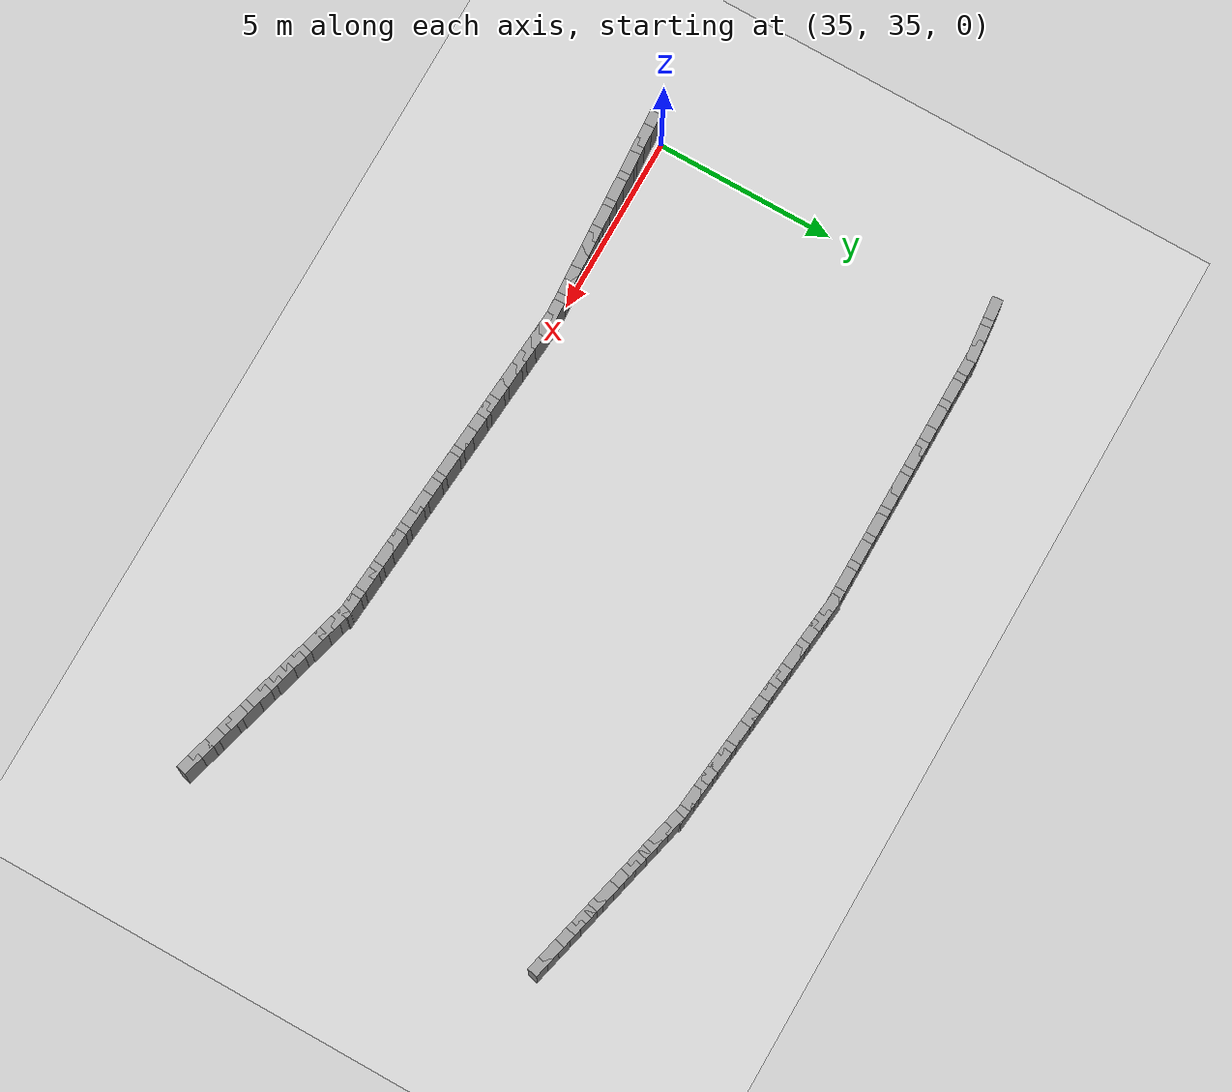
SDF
<sdf version="1.5">
 <world name="ellipse_loop">
  <include><uri>model://sun</uri></include>
  <include><uri>model://ground_plane</uri></include>
  <model name="curbL_297">
   <static>true</static>
   <pose>55.198 42.932 0.750 0 0 2.910</pose>
   <link name="link">
    <collision name="col"><geometry><box><size>0.600 0.300 1.500</size></box></geometry></collision>
    <visual name="vis">
     <geometry><box><size>0.600 0.300 1.500</size></box></geometry>
     <material><ambient>0.6 0.6 0.6 1</ambient><diffuse>0.6 0.6 0.6 1</diffuse></material>
    </visual>
   </link>
  </model>
  <model name="curbL_298">
   <static>true</static>
   <pose>54.809 43.024 0.750 0 0 2.910</pose>
   <link name="link">
    <collision name="col"><geometry><box><size>0.600 0.300 1.500</size></box></geometry></collision>
    <visual name="vis">
     <geometry><box><size>0.600 0.300 1.500</size></box></geometry>
     <material><ambient>0.6 0.6 0.6 1</ambient><diffuse>0.6 0.6 0.6 1</diffuse></material>
    </visual>
   </link>
  </model>
  <model name="curbL_299">
   <static>true</static>
   <pose>54.419 43.116 0.750 0 0 2.910</pose>
   <link name="link">
    <collision name="col"><geometry><box><size>0.600 0.300 1.500</size></box></geometry></collision>
    <visual name="vis">
     <geometry><box><size>0.600 0.300 1.500</size></box></geometry>
     <material><ambient>0.6 0.6 0.6 1</ambient><diffuse>0.6 0.6 0.6 1</diffuse></material>
    </visual>
   </link>
  </model>
  <model name="curbL_300">
   <static>true</static>
   <pose>54.030 43.208 0.750 0 0 2.910</pose>
   <link name="link">
    <collision name="col"><geometry><box><size>0.600 0.300 1.500</size></box></geometry></collision>
    <visual name="vis">
     <geometry><box><size>0.600 0.300 1.500</size></box></geometry>
     <material><ambient>0.6 0.6 0.6 1</ambient><diffuse>0.6 0.6 0.6 1</diffuse></material>
    </visual>
   </link>
  </model>
  <model name="curbL_301">
   <static>true</static>
   <pose>53.641 43.300 0.750 0 0 2.910</pose>
   <link name="link">
    <collision name="col"><geometry><box><size>0.600 0.300 1.500</size></box></geometry></collision>
    <visual name="vis">
     <geometry><box><size>0.600 0.300 1.500</size></box></geometry>
     <material><ambient>0.6 0.6 0.6 1</ambient><diffuse>0.6 0.6 0.6 1</diffuse></material>
    </visual>
   </link>
  </model>
  <model name="curbL_302">
   <static>true</static>
   <pose>53.252 43.391 0.750 0 0 2.910</pose>
   <link name="link">
    <collision name="col"><geometry><box><size>0.600 0.300 1.500</size></box></geometry></collision>
    <visual name="vis">
     <geometry><box><size>0.600 0.300 1.500</size></box></geometry>
     <material><ambient>0.6 0.6 0.6 1</ambient><diffuse>0.6 0.6 0.6 1</diffuse></material>
    </visual>
   </link>
  </model>
  <model name="curbL_303">
   <static>true</static>
   <pose>52.862 43.483 0.750 0 0 2.910</pose>
   <link name="link">
    <collision name="col"><geometry><box><size>0.600 0.300 1.500</size></box></geometry></collision>
    <visual name="vis">
     <geometry><box><size>0.600 0.300 1.500</size></box></geometry>
     <material><ambient>0.6 0.6 0.6 1</ambient><diffuse>0.6 0.6 0.6 1</diffuse></material>
    </visual>
   </link>
  </model>
  <model name="curbL_304">
   <static>true</static>
   <pose>52.473 43.575 0.750 0 0 2.910</pose>
   <link name="link">
    <collision name="col"><geometry><box><size>0.600 0.300 1.500</size></box></geometry></collision>
    <visual name="vis">
     <geometry><box><size>0.600 0.300 1.500</size></box></geometry>
     <material><ambient>0.6 0.6 0.6 1</ambient><diffuse>0.6 0.6 0.6 1</diffuse></material>
    </visual>
   </link>
  </model>
  <model name="curbL_305">
   <static>true</static>
   <pose>52.084 43.667 0.750 0 0 2.910</pose>
   <link name="link">
    <collision name="col"><geometry><box><size>0.600 0.300 1.500</size></box></geometry></collision>
    <visual name="vis">
     <geometry><box><size>0.600 0.300 1.500</size></box></geometry>
     <material><ambient>0.6 0.6 0.6 1</ambient><diffuse>0.6 0.6 0.6 1</diffuse></material>
    </visual>
   </link>
  </model>
  <model name="curbL_306">
   <static>true</static>
   <pose>51.694 43.759 0.750 0 0 2.910</pose>
   <link name="link">
    <collision name="col"><geometry><box><size>0.600 0.300 1.500</size></box></geometry></collision>
    <visual name="vis">
     <geometry><box><size>0.600 0.300 1.500</size></box></geometry>
     <material><ambient>0.6 0.6 0.6 1</ambient><diffuse>0.6 0.6 0.6 1</diffuse></material>
    </visual>
   </link>
  </model>
  <model name="curbL_307">
   <static>true</static>
   <pose>51.305 43.851 0.750 0 0 2.910</pose>
   <link name="link">
    <collision name="col"><geometry><box><size>0.600 0.300 1.500</size></box></geometry></collision>
    <visual name="vis">
     <geometry><box><size>0.600 0.300 1.500</size></box></geometry>
     <material><ambient>0.6 0.6 0.6 1</ambient><diffuse>0.6 0.6 0.6 1</diffuse></material>
    </visual>
   </link>
  </model>
  <model name="curbL_308">
   <static>true</static>
   <pose>50.916 43.943 0.750 0 0 2.910</pose>
   <link name="link">
    <collision name="col"><geometry><box><size>0.600 0.300 1.500</size></box></geometry></collision>
    <visual name="vis">
     <geometry><box><size>0.600 0.300 1.500</size></box></geometry>
     <material><ambient>0.6 0.6 0.6 1</ambient><diffuse>0.6 0.6 0.6 1</diffuse></material>
    </visual>
   </link>
  </model>
  <model name="curbL_309">
   <static>true</static>
   <pose>50.527 44.035 0.750 0 0 2.910</pose>
   <link name="link">
    <collision name="col"><geometry><box><size>0.600 0.300 1.500</size></box></geometry></collision>
    <visual name="vis">
     <geometry><box><size>0.600 0.300 1.500</size></box></geometry>
     <material><ambient>0.6 0.6 0.6 1</ambient><diffuse>0.6 0.6 0.6 1</diffuse></material>
    </visual>
   </link>
  </model>
  <model name="curbL_310">
   <static>true</static>
   <pose>50.137 44.126 0.750 0 0 3.035</pose>
   <link name="link">
    <collision name="col"><geometry><box><size>0.600 0.300 1.500</size></box></geometry></collision>
    <visual name="vis">
     <geometry><box><size>0.600 0.300 1.500</size></box></geometry>
     <material><ambient>0.6 0.6 0.6 1</ambient><diffuse>0.6 0.6 0.6 1</diffuse></material>
    </visual>
   </link>
  </model>
  <model name="curbL_311">
   <static>true</static>
   <pose>49.739 44.168 0.750 0 0 3.035</pose>
   <link name="link">
    <collision name="col"><geometry><box><size>0.600 0.300 1.500</size></box></geometry></collision>
    <visual name="vis">
     <geometry><box><size>0.600 0.300 1.500</size></box></geometry>
     <material><ambient>0.6 0.6 0.6 1</ambient><diffuse>0.6 0.6 0.6 1</diffuse></material>
    </visual>
   </link>
  </model>
  <model name="curbL_312">
   <static>true</static>
   <pose>49.342 44.211 0.750 0 0 3.035</pose>
   <link name="link">
    <collision name="col"><geometry><box><size>0.600 0.300 1.500</size></box></geometry></collision>
    <visual name="vis">
     <geometry><box><size>0.600 0.300 1.500</size></box></geometry>
     <material><ambient>0.6 0.6 0.6 1</ambient><diffuse>0.6 0.6 0.6 1</diffuse></material>
    </visual>
   </link>
  </model>
  <model name="curbL_313">
   <static>true</static>
   <pose>48.944 44.253 0.750 0 0 3.035</pose>
   <link name="link">
    <collision name="col"><geometry><box><size>0.600 0.300 1.500</size></box></geometry></collision>
    <visual name="vis">
     <geometry><box><size>0.600 0.300 1.500</size></box></geometry>
     <material><ambient>0.6 0.6 0.6 1</ambient><diffuse>0.6 0.6 0.6 1</diffuse></material>
    </visual>
   </link>
  </model>
  <model name="curbL_314">
   <static>true</static>
   <pose>48.546 44.296 0.750 0 0 3.035</pose>
   <link name="link">
    <collision name="col"><geometry><box><size>0.600 0.300 1.500</size></box></geometry></collision>
    <visual name="vis">
     <geometry><box><size>0.600 0.300 1.500</size></box></geometry>
     <material><ambient>0.6 0.6 0.6 1</ambient><diffuse>0.6 0.6 0.6 1</diffuse></material>
    </visual>
   </link>
  </model>
  <model name="curbL_315">
   <static>true</static>
   <pose>48.148 44.338 0.750 0 0 3.035</pose>
   <link name="link">
    <collision name="col"><geometry><box><size>0.600 0.300 1.500</size></box></geometry></collision>
    <visual name="vis">
     <geometry><box><size>0.600 0.300 1.500</size></box></geometry>
     <material><ambient>0.6 0.6 0.6 1</ambient><diffuse>0.6 0.6 0.6 1</diffuse></material>
    </visual>
   </link>
  </model>
  <model name="curbL_316">
   <static>true</static>
   <pose>47.751 44.381 0.750 0 0 3.035</pose>
   <link name="link">
    <collision name="col"><geometry><box><size>0.600 0.300 1.500</size></box></geometry></collision>
    <visual name="vis">
     <geometry><box><size>0.600 0.300 1.500</size></box></geometry>
     <material><ambient>0.6 0.6 0.6 1</ambient><diffuse>0.6 0.6 0.6 1</diffuse></material>
    </visual>
   </link>
  </model>
  <model name="curbL_317">
   <static>true</static>
   <pose>47.353 44.423 0.750 0 0 3.035</pose>
   <link name="link">
    <collision name="col"><geometry><box><size>0.600 0.300 1.500</size></box></geometry></collision>
    <visual name="vis">
     <geometry><box><size>0.600 0.300 1.500</size></box></geometry>
     <material><ambient>0.6 0.6 0.6 1</ambient><diffuse>0.6 0.6 0.6 1</diffuse></material>
    </visual>
   </link>
  </model>
  <model name="curbL_318">
   <static>true</static>
   <pose>46.955 44.466 0.750 0 0 3.035</pose>
   <link name="link">
    <collision name="col"><geometry><box><size>0.600 0.300 1.500</size></box></geometry></collision>
    <visual name="vis">
     <geometry><box><size>0.600 0.300 1.500</size></box></geometry>
     <material><ambient>0.6 0.6 0.6 1</ambient><diffuse>0.6 0.6 0.6 1</diffuse></material>
    </visual>
   </link>
  </model>
  <model name="curbL_319">
   <static>true</static>
   <pose>46.557 44.508 0.750 0 0 3.035</pose>
   <link name="link">
    <collision name="col"><geometry><box><size>0.600 0.300 1.500</size></box></geometry></collision>
    <visual name="vis">
     <geometry><box><size>0.600 0.300 1.500</size></box></geometry>
     <material><ambient>0.6 0.6 0.6 1</ambient><diffuse>0.6 0.6 0.6 1</diffuse></material>
    </visual>
   </link>
  </model>
  <model name="curbL_320">
   <static>true</static>
   <pose>46.160 44.551 0.750 0 0 3.035</pose>
   <link name="link">
    <collision name="col"><geometry><box><size>0.600 0.300 1.500</size></box></geometry></collision>
    <visual name="vis">
     <geometry><box><size>0.600 0.300 1.500</size></box></geometry>
     <material><ambient>0.6 0.6 0.6 1</ambient><diffuse>0.6 0.6 0.6 1</diffuse></material>
    </visual>
   </link>
  </model>
  <model name="curbL_321">
   <static>true</static>
   <pose>45.762 44.593 0.750 0 0 3.035</pose>
   <link name="link">
    <collision name="col"><geometry><box><size>0.600 0.300 1.500</size></box></geometry></collision>
    <visual name="vis">
     <geometry><box><size>0.600 0.300 1.500</size></box></geometry>
     <material><ambient>0.6 0.6 0.6 1</ambient><diffuse>0.6 0.6 0.6 1</diffuse></material>
    </visual>
   </link>
  </model>
  <model name="curbL_322">
   <static>true</static>
   <pose>45.364 44.636 0.750 0 0 3.035</pose>
   <link name="link">
    <collision name="col"><geometry><box><size>0.600 0.300 1.500</size></box></geometry></collision>
    <visual name="vis">
     <geometry><box><size>0.600 0.300 1.500</size></box></geometry>
     <material><ambient>0.6 0.6 0.6 1</ambient><diffuse>0.6 0.6 0.6 1</diffuse></material>
    </visual>
   </link>
  </model>
  <model name="curbL_323">
   <static>true</static>
   <pose>44.967 44.678 0.750 0 0 3.035</pose>
   <link name="link">
    <collision name="col"><geometry><box><size>0.600 0.300 1.500</size></box></geometry></collision>
    <visual name="vis">
     <geometry><box><size>0.600 0.300 1.500</size></box></geometry>
     <material><ambient>0.6 0.6 0.6 1</ambient><diffuse>0.6 0.6 0.6 1</diffuse></material>
    </visual>
   </link>
  </model>
  <model name="curbL_324">
   <static>true</static>
   <pose>44.569 44.721 0.750 0 0 3.035</pose>
   <link name="link">
    <collision name="col"><geometry><box><size>0.600 0.300 1.500</size></box></geometry></collision>
    <visual name="vis">
     <geometry><box><size>0.600 0.300 1.500</size></box></geometry>
     <material><ambient>0.6 0.6 0.6 1</ambient><diffuse>0.6 0.6 0.6 1</diffuse></material>
    </visual>
   </link>
  </model>
  <model name="curbL_325">
   <static>true</static>
   <pose>44.171 44.763 0.750 0 0 3.035</pose>
   <link name="link">
    <collision name="col"><geometry><box><size>0.600 0.300 1.500</size></box></geometry></collision>
    <visual name="vis">
     <geometry><box><size>0.600 0.300 1.500</size></box></geometry>
     <material><ambient>0.6 0.6 0.6 1</ambient><diffuse>0.6 0.6 0.6 1</diffuse></material>
    </visual>
   </link>
  </model>
  <model name="curbL_326">
   <static>true</static>
   <pose>43.773 44.806 0.750 0 0 3.035</pose>
   <link name="link">
    <collision name="col"><geometry><box><size>0.600 0.300 1.500</size></box></geometry></collision>
    <visual name="vis">
     <geometry><box><size>0.600 0.300 1.500</size></box></geometry>
     <material><ambient>0.6 0.6 0.6 1</ambient><diffuse>0.6 0.6 0.6 1</diffuse></material>
    </visual>
   </link>
  </model>
  <model name="curbL_327">
   <static>true</static>
   <pose>43.373 44.809 0.750 0 0 3.142</pose>
   <link name="link">
    <collision name="col"><geometry><box><size>0.600 0.300 1.500</size></box></geometry></collision>
    <visual name="vis">
     <geometry><box><size>0.600 0.300 1.500</size></box></geometry>
     <material><ambient>0.6 0.6 0.6 1</ambient><diffuse>0.6 0.6 0.6 1</diffuse></material>
    </visual>
   </link>
  </model>
  <model name="curbL_328">
   <static>true</static>
   <pose>42.973 44.809 0.750 0 0 3.142</pose>
   <link name="link">
    <collision name="col"><geometry><box><size>0.600 0.300 1.500</size></box></geometry></collision>
    <visual name="vis">
     <geometry><box><size>0.600 0.300 1.500</size></box></geometry>
     <material><ambient>0.6 0.6 0.6 1</ambient><diffuse>0.6 0.6 0.6 1</diffuse></material>
    </visual>
   </link>
  </model>
  <model name="curbL_329">
   <static>true</static>
   <pose>42.573 44.809 0.750 0 0 3.142</pose>
   <link name="link">
    <collision name="col"><geometry><box><size>0.600 0.300 1.500</size></box></geometry></collision>
    <visual name="vis">
     <geometry><box><size>0.600 0.300 1.500</size></box></geometry>
     <material><ambient>0.6 0.6 0.6 1</ambient><diffuse>0.6 0.6 0.6 1</diffuse></material>
    </visual>
   </link>
  </model>
  <model name="curbL_330">
   <static>true</static>
   <pose>42.173 44.809 0.750 0 0 3.142</pose>
   <link name="link">
    <collision name="col"><geometry><box><size>0.600 0.300 1.500</size></box></geometry></collision>
    <visual name="vis">
     <geometry><box><size>0.600 0.300 1.500</size></box></geometry>
     <material><ambient>0.6 0.6 0.6 1</ambient><diffuse>0.6 0.6 0.6 1</diffuse></material>
    </visual>
   </link>
  </model>
  <model name="curbL_331">
   <static>true</static>
   <pose>41.773 44.809 0.750 0 0 3.142</pose>
   <link name="link">
    <collision name="col"><geometry><box><size>0.600 0.300 1.500</size></box></geometry></collision>
    <visual name="vis">
     <geometry><box><size>0.600 0.300 1.500</size></box></geometry>
     <material><ambient>0.6 0.6 0.6 1</ambient><diffuse>0.6 0.6 0.6 1</diffuse></material>
    </visual>
   </link>
  </model>
  <model name="curbL_332">
   <static>true</static>
   <pose>41.373 44.809 0.750 0 0 3.142</pose>
   <link name="link">
    <collision name="col"><geometry><box><size>0.600 0.300 1.500</size></box></geometry></collision>
    <visual name="vis">
     <geometry><box><size>0.600 0.300 1.500</size></box></geometry>
     <material><ambient>0.6 0.6 0.6 1</ambient><diffuse>0.6 0.6 0.6 1</diffuse></material>
    </visual>
   </link>
  </model>
  <model name="curbL_333">
   <static>true</static>
   <pose>40.973 44.809 0.750 0 0 3.142</pose>
   <link name="link">
    <collision name="col"><geometry><box><size>0.600 0.300 1.500</size></box></geometry></collision>
    <visual name="vis">
     <geometry><box><size>0.600 0.300 1.500</size></box></geometry>
     <material><ambient>0.6 0.6 0.6 1</ambient><diffuse>0.6 0.6 0.6 1</diffuse></material>
    </visual>
   </link>
  </model>
  <model name="curbL_334">
   <static>true</static>
   <pose>40.573 44.809 0.750 0 0 3.142</pose>
   <link name="link">
    <collision name="col"><geometry><box><size>0.600 0.300 1.500</size></box></geometry></collision>
    <visual name="vis">
     <geometry><box><size>0.600 0.300 1.500</size></box></geometry>
     <material><ambient>0.6 0.6 0.6 1</ambient><diffuse>0.6 0.6 0.6 1</diffuse></material>
    </visual>
   </link>
  </model>
  <model name="curbL_335">
   <static>true</static>
   <pose>40.173 44.809 0.750 0 0 3.142</pose>
   <link name="link">
    <collision name="col"><geometry><box><size>0.600 0.300 1.500</size></box></geometry></collision>
    <visual name="vis">
     <geometry><box><size>0.600 0.300 1.500</size></box></geometry>
     <material><ambient>0.6 0.6 0.6 1</ambient><diffuse>0.6 0.6 0.6 1</diffuse></material>
    </visual>
   </link>
  </model>
  <model name="curbL_336">
   <static>true</static>
   <pose>39.773 44.809 0.750 0 0 3.142</pose>
   <link name="link">
    <collision name="col"><geometry><box><size>0.600 0.300 1.500</size></box></geometry></collision>
    <visual name="vis">
     <geometry><box><size>0.600 0.300 1.500</size></box></geometry>
     <material><ambient>0.6 0.6 0.6 1</ambient><diffuse>0.6 0.6 0.6 1</diffuse></material>
    </visual>
   </link>
  </model>
  <model name="curbL_337">
   <static>true</static>
   <pose>39.373 44.809 0.750 0 0 3.142</pose>
   <link name="link">
    <collision name="col"><geometry><box><size>0.600 0.300 1.500</size></box></geometry></collision>
    <visual name="vis">
     <geometry><box><size>0.600 0.300 1.500</size></box></geometry>
     <material><ambient>0.6 0.6 0.6 1</ambient><diffuse>0.6 0.6 0.6 1</diffuse></material>
    </visual>
   </link>
  </model>
  <model name="curbL_338">
   <static>true</static>
   <pose>38.973 44.809 0.750 0 0 3.142</pose>
   <link name="link">
    <collision name="col"><geometry><box><size>0.600 0.300 1.500</size></box></geometry></collision>
    <visual name="vis">
     <geometry><box><size>0.600 0.300 1.500</size></box></geometry>
     <material><ambient>0.6 0.6 0.6 1</ambient><diffuse>0.6 0.6 0.6 1</diffuse></material>
    </visual>
   </link>
  </model>
  <model name="curbL_339">
   <static>true</static>
   <pose>38.573 44.809 0.750 0 0 3.142</pose>
   <link name="link">
    <collision name="col"><geometry><box><size>0.600 0.300 1.500</size></box></geometry></collision>
    <visual name="vis">
     <geometry><box><size>0.600 0.300 1.500</size></box></geometry>
     <material><ambient>0.6 0.6 0.6 1</ambient><diffuse>0.6 0.6 0.6 1</diffuse></material>
    </visual>
   </link>
  </model>
  <model name="curbL_340">
   <static>true</static>
   <pose>38.173 44.809 0.750 0 0 3.142</pose>
   <link name="link">
    <collision name="col"><geometry><box><size>0.600 0.300 1.500</size></box></geometry></collision>
    <visual name="vis">
     <geometry><box><size>0.600 0.300 1.500</size></box></geometry>
     <material><ambient>0.6 0.6 0.6 1</ambient><diffuse>0.6 0.6 0.6 1</diffuse></material>
    </visual>
   </link>
  </model>
  <model name="curbL_341">
   <static>true</static>
   <pose>37.773 44.809 0.750 0 0 3.142</pose>
   <link name="link">
    <collision name="col"><geometry><box><size>0.600 0.300 1.500</size></box></geometry></collision>
    <visual name="vis">
     <geometry><box><size>0.600 0.300 1.500</size></box></geometry>
     <material><ambient>0.6 0.6 0.6 1</ambient><diffuse>0.6 0.6 0.6 1</diffuse></material>
    </visual>
   </link>
  </model>
  <model name="curbL_342">
   <static>true</static>
   <pose>37.373 44.809 0.750 0 0 3.142</pose>
   <link name="link">
    <collision name="col"><geometry><box><size>0.600 0.300 1.500</size></box></geometry></collision>
    <visual name="vis">
     <geometry><box><size>0.600 0.300 1.500</size></box></geometry>
     <material><ambient>0.6 0.6 0.6 1</ambient><diffuse>0.6 0.6 0.6 1</diffuse></material>
    </visual>
   </link>
  </model>
  <model name="curbL_343">
   <static>true</static>
   <pose>36.973 44.809 0.750 0 0 3.142</pose>
   <link name="link">
    <collision name="col"><geometry><box><size>0.600 0.300 1.500</size></box></geometry></collision>
    <visual name="vis">
     <geometry><box><size>0.600 0.300 1.500</size></box></geometry>
     <material><ambient>0.6 0.6 0.6 1</ambient><diffuse>0.6 0.6 0.6 1</diffuse></material>
    </visual>
   </link>
  </model>
  <model name="curbL_344">
   <static>true</static>
   <pose>36.573 44.809 0.750 0 0 3.142</pose>
   <link name="link">
    <collision name="col"><geometry><box><size>0.600 0.300 1.500</size></box></geometry></collision>
    <visual name="vis">
     <geometry><box><size>0.600 0.300 1.500</size></box></geometry>
     <material><ambient>0.6 0.6 0.6 1</ambient><diffuse>0.6 0.6 0.6 1</diffuse></material>
    </visual>
   </link>
  </model>
  <model name="curbL_345">
   <static>true</static>
   <pose>36.174 44.798 0.750 0 0 -3.042</pose>
   <link name="link">
    <collision name="col"><geometry><box><size>0.600 0.300 1.500</size></box></geometry></collision>
    <visual name="vis">
     <geometry><box><size>0.600 0.300 1.500</size></box></geometry>
     <material><ambient>0.6 0.6 0.6 1</ambient><diffuse>0.6 0.6 0.6 1</diffuse></material>
    </visual>
   </link>
  </model>
  <model name="curbL_346">
   <static>true</static>
   <pose>35.776 44.758 0.750 0 0 -3.042</pose>
   <link name="link">
    <collision name="col"><geometry><box><size>0.600 0.300 1.500</size></box></geometry></collision>
    <visual name="vis">
     <geometry><box><size>0.600 0.300 1.500</size></box></geometry>
     <material><ambient>0.6 0.6 0.6 1</ambient><diffuse>0.6 0.6 0.6 1</diffuse></material>
    </visual>
   </link>
  </model>
  <model name="curbL_347">
   <static>true</static>
   <pose>35.378 44.719 0.750 0 0 -3.042</pose>
   <link name="link">
    <collision name="col"><geometry><box><size>0.600 0.300 1.500</size></box></geometry></collision>
    <visual name="vis">
     <geometry><box><size>0.600 0.300 1.500</size></box></geometry>
     <material><ambient>0.6 0.6 0.6 1</ambient><diffuse>0.6 0.6 0.6 1</diffuse></material>
    </visual>
   </link>
  </model>
  <model name="curbL_348">
   <static>true</static>
   <pose>34.980 44.679 0.750 0 0 -3.042</pose>
   <link name="link">
    <collision name="col"><geometry><box><size>0.600 0.300 1.500</size></box></geometry></collision>
    <visual name="vis">
     <geometry><box><size>0.600 0.300 1.500</size></box></geometry>
     <material><ambient>0.6 0.6 0.6 1</ambient><diffuse>0.6 0.6 0.6 1</diffuse></material>
    </visual>
   </link>
  </model>
  <model name="curbR_59">
   <static>true</static>
   <pose>34.984 34.653 0.750 0 0 0.058</pose>
   <link name="link">
    <collision name="col"><geometry><box><size>0.600 0.300 1.500</size></box></geometry></collision>
    <visual name="vis">
     <geometry><box><size>0.600 0.300 1.500</size></box></geometry>
     <material><ambient>0.6 0.6 0.6 1</ambient><diffuse>0.6 0.6 0.6 1</diffuse></material>
    </visual>
   </link>
  </model>
  <model name="curbR_60">
   <static>true</static>
   <pose>35.383 34.676 0.750 0 0 0.058</pose>
   <link name="link">
    <collision name="col"><geometry><box><size>0.600 0.300 1.500</size></box></geometry></collision>
    <visual name="vis">
     <geometry><box><size>0.600 0.300 1.500</size></box></geometry>
     <material><ambient>0.6 0.6 0.6 1</ambient><diffuse>0.6 0.6 0.6 1</diffuse></material>
    </visual>
   </link>
  </model>
  <model name="curbR_61">
   <static>true</static>
   <pose>35.783 34.699 0.750 0 0 0.058</pose>
   <link name="link">
    <collision name="col"><geometry><box><size>0.600 0.300 1.500</size></box></geometry></collision>
    <visual name="vis">
     <geometry><box><size>0.600 0.300 1.500</size></box></geometry>
     <material><ambient>0.6 0.6 0.6 1</ambient><diffuse>0.6 0.6 0.6 1</diffuse></material>
    </visual>
   </link>
  </model>
  <model name="curbR_62">
   <static>true</static>
   <pose>36.182 34.722 0.750 0 0 0.058</pose>
   <link name="link">
    <collision name="col"><geometry><box><size>0.600 0.300 1.500</size></box></geometry></collision>
    <visual name="vis">
     <geometry><box><size>0.600 0.300 1.500</size></box></geometry>
     <material><ambient>0.6 0.6 0.6 1</ambient><diffuse>0.6 0.6 0.6 1</diffuse></material>
    </visual>
   </link>
  </model>
  <model name="curbR_63">
   <static>true</static>
   <pose>36.581 34.746 0.750 0 0 0.058</pose>
   <link name="link">
    <collision name="col"><geometry><box><size>0.600 0.300 1.500</size></box></geometry></collision>
    <visual name="vis">
     <geometry><box><size>0.600 0.300 1.500</size></box></geometry>
     <material><ambient>0.6 0.6 0.6 1</ambient><diffuse>0.6 0.6 0.6 1</diffuse></material>
    </visual>
   </link>
  </model>
  <model name="curbR_64">
   <static>true</static>
   <pose>36.981 34.769 0.750 0 0 0.058</pose>
   <link name="link">
    <collision name="col"><geometry><box><size>0.600 0.300 1.500</size></box></geometry></collision>
    <visual name="vis">
     <geometry><box><size>0.600 0.300 1.500</size></box></geometry>
     <material><ambient>0.6 0.6 0.6 1</ambient><diffuse>0.6 0.6 0.6 1</diffuse></material>
    </visual>
   </link>
  </model>
  <model name="curbR_65">
   <static>true</static>
   <pose>37.380 34.792 0.750 0 0 0.058</pose>
   <link name="link">
    <collision name="col"><geometry><box><size>0.600 0.300 1.500</size></box></geometry></collision>
    <visual name="vis">
     <geometry><box><size>0.600 0.300 1.500</size></box></geometry>
     <material><ambient>0.6 0.6 0.6 1</ambient><diffuse>0.6 0.6 0.6 1</diffuse></material>
    </visual>
   </link>
  </model>
  <model name="curbR_66">
   <static>true</static>
   <pose>37.779 34.815 0.750 0 0 0.058</pose>
   <link name="link">
    <collision name="col"><geometry><box><size>0.600 0.300 1.500</size></box></geometry></collision>
    <visual name="vis">
     <geometry><box><size>0.600 0.300 1.500</size></box></geometry>
     <material><ambient>0.6 0.6 0.6 1</ambient><diffuse>0.6 0.6 0.6 1</diffuse></material>
    </visual>
   </link>
  </model>
  <model name="curbR_67">
   <static>true</static>
   <pose>38.179 34.838 0.750 0 0 0.058</pose>
   <link name="link">
    <collision name="col"><geometry><box><size>0.600 0.300 1.500</size></box></geometry></collision>
    <visual name="vis">
     <geometry><box><size>0.600 0.300 1.500</size></box></geometry>
     <material><ambient>0.6 0.6 0.6 1</ambient><diffuse>0.6 0.6 0.6 1</diffuse></material>
    </visual>
   </link>
  </model>
  <model name="curbR_68">
   <static>true</static>
   <pose>38.578 34.862 0.750 0 0 0.058</pose>
   <link name="link">
    <collision name="col"><geometry><box><size>0.600 0.300 1.500</size></box></geometry></collision>
    <visual name="vis">
     <geometry><box><size>0.600 0.300 1.500</size></box></geometry>
     <material><ambient>0.6 0.6 0.6 1</ambient><diffuse>0.6 0.6 0.6 1</diffuse></material>
    </visual>
   </link>
  </model>
  <model name="curbR_69">
   <static>true</static>
   <pose>38.977 34.885 0.750 0 0 0.058</pose>
   <link name="link">
    <collision name="col"><geometry><box><size>0.600 0.300 1.500</size></box></geometry></collision>
    <visual name="vis">
     <geometry><box><size>0.600 0.300 1.500</size></box></geometry>
     <material><ambient>0.6 0.6 0.6 1</ambient><diffuse>0.6 0.6 0.6 1</diffuse></material>
    </visual>
   </link>
  </model>
  <model name="curbR_70">
   <static>true</static>
   <pose>39.377 34.908 0.750 0 0 0.058</pose>
   <link name="link">
    <collision name="col"><geometry><box><size>0.600 0.300 1.500</size></box></geometry></collision>
    <visual name="vis">
     <geometry><box><size>0.600 0.300 1.500</size></box></geometry>
     <material><ambient>0.6 0.6 0.6 1</ambient><diffuse>0.6 0.6 0.6 1</diffuse></material>
    </visual>
   </link>
  </model>
  <model name="curbR_71">
   <static>true</static>
   <pose>39.776 34.931 0.750 0 0 0.058</pose>
   <link name="link">
    <collision name="col"><geometry><box><size>0.600 0.300 1.500</size></box></geometry></collision>
    <visual name="vis">
     <geometry><box><size>0.600 0.300 1.500</size></box></geometry>
     <material><ambient>0.6 0.6 0.6 1</ambient><diffuse>0.6 0.6 0.6 1</diffuse></material>
    </visual>
   </link>
  </model>
  <model name="curbR_72">
   <static>true</static>
   <pose>40.175 34.954 0.750 0 0 0.058</pose>
   <link name="link">
    <collision name="col"><geometry><box><size>0.600 0.300 1.500</size></box></geometry></collision>
    <visual name="vis">
     <geometry><box><size>0.600 0.300 1.500</size></box></geometry>
     <material><ambient>0.6 0.6 0.6 1</ambient><diffuse>0.6 0.6 0.6 1</diffuse></material>
    </visual>
   </link>
  </model>
  <model name="curbR_73">
   <static>true</static>
   <pose>40.574 34.978 0.750 0 0 0.058</pose>
   <link name="link">
    <collision name="col"><geometry><box><size>0.600 0.300 1.500</size></box></geometry></collision>
    <visual name="vis">
     <geometry><box><size>0.600 0.300 1.500</size></box></geometry>
     <material><ambient>0.6 0.6 0.6 1</ambient><diffuse>0.6 0.6 0.6 1</diffuse></material>
    </visual>
   </link>
  </model>
  <model name="curbR_74">
   <static>true</static>
   <pose>40.973 34.957 0.750 0 0 -0.076</pose>
   <link name="link">
    <collision name="col"><geometry><box><size>0.600 0.300 1.500</size></box></geometry></collision>
    <visual name="vis">
     <geometry><box><size>0.600 0.300 1.500</size></box></geometry>
     <material><ambient>0.6 0.6 0.6 1</ambient><diffuse>0.6 0.6 0.6 1</diffuse></material>
    </visual>
   </link>
  </model>
  <model name="curbR_75">
   <static>true</static>
   <pose>41.372 34.927 0.750 0 0 -0.076</pose>
   <link name="link">
    <collision name="col"><geometry><box><size>0.600 0.300 1.500</size></box></geometry></collision>
    <visual name="vis">
     <geometry><box><size>0.600 0.300 1.500</size></box></geometry>
     <material><ambient>0.6 0.6 0.6 1</ambient><diffuse>0.6 0.6 0.6 1</diffuse></material>
    </visual>
   </link>
  </model>
  <model name="curbR_76">
   <static>true</static>
   <pose>41.771 34.896 0.750 0 0 -0.076</pose>
   <link name="link">
    <collision name="col"><geometry><box><size>0.600 0.300 1.500</size></box></geometry></collision>
    <visual name="vis">
     <geometry><box><size>0.600 0.300 1.500</size></box></geometry>
     <material><ambient>0.6 0.6 0.6 1</ambient><diffuse>0.6 0.6 0.6 1</diffuse></material>
    </visual>
   </link>
  </model>
  <model name="curbR_77">
   <static>true</static>
   <pose>42.170 34.865 0.750 0 0 -0.076</pose>
   <link name="link">
    <collision name="col"><geometry><box><size>0.600 0.300 1.500</size></box></geometry></collision>
    <visual name="vis">
     <geometry><box><size>0.600 0.300 1.500</size></box></geometry>
     <material><ambient>0.6 0.6 0.6 1</ambient><diffuse>0.6 0.6 0.6 1</diffuse></material>
    </visual>
   </link>
  </model>
  <model name="curbR_78">
   <static>true</static>
   <pose>42.569 34.835 0.750 0 0 -0.076</pose>
   <link name="link">
    <collision name="col"><geometry><box><size>0.600 0.300 1.500</size></box></geometry></collision>
    <visual name="vis">
     <geometry><box><size>0.600 0.300 1.500</size></box></geometry>
     <material><ambient>0.6 0.6 0.6 1</ambient><diffuse>0.6 0.6 0.6 1</diffuse></material>
    </visual>
   </link>
  </model>
  <model name="curbR_79">
   <static>true</static>
   <pose>42.968 34.804 0.750 0 0 -0.076</pose>
   <link name="link">
    <collision name="col"><geometry><box><size>0.600 0.300 1.500</size></box></geometry></collision>
    <visual name="vis">
     <geometry><box><size>0.600 0.300 1.500</size></box></geometry>
     <material><ambient>0.6 0.6 0.6 1</ambient><diffuse>0.6 0.6 0.6 1</diffuse></material>
    </visual>
   </link>
  </model>
  <model name="curbR_80">
   <static>true</static>
   <pose>43.366 34.774 0.750 0 0 -0.076</pose>
   <link name="link">
    <collision name="col"><geometry><box><size>0.600 0.300 1.500</size></box></geometry></collision>
    <visual name="vis">
     <geometry><box><size>0.600 0.300 1.500</size></box></geometry>
     <material><ambient>0.6 0.6 0.6 1</ambient><diffuse>0.6 0.6 0.6 1</diffuse></material>
    </visual>
   </link>
  </model>
  <model name="curbR_81">
   <static>true</static>
   <pose>43.765 34.743 0.750 0 0 -0.076</pose>
   <link name="link">
    <collision name="col"><geometry><box><size>0.600 0.300 1.500</size></box></geometry></collision>
    <visual name="vis">
     <geometry><box><size>0.600 0.300 1.500</size></box></geometry>
     <material><ambient>0.6 0.6 0.6 1</ambient><diffuse>0.6 0.6 0.6 1</diffuse></material>
    </visual>
   </link>
  </model>
  <model name="curbR_82">
   <static>true</static>
   <pose>44.164 34.713 0.750 0 0 -0.076</pose>
   <link name="link">
    <collision name="col"><geometry><box><size>0.600 0.300 1.500</size></box></geometry></collision>
    <visual name="vis">
     <geometry><box><size>0.600 0.300 1.500</size></box></geometry>
     <material><ambient>0.6 0.6 0.6 1</ambient><diffuse>0.6 0.6 0.6 1</diffuse></material>
    </visual>
   </link>
  </model>
  <model name="curbR_83">
   <static>true</static>
   <pose>44.563 34.682 0.750 0 0 -0.076</pose>
   <link name="link">
    <collision name="col"><geometry><box><size>0.600 0.300 1.500</size></box></geometry></collision>
    <visual name="vis">
     <geometry><box><size>0.600 0.300 1.500</size></box></geometry>
     <material><ambient>0.6 0.6 0.6 1</ambient><diffuse>0.6 0.6 0.6 1</diffuse></material>
    </visual>
   </link>
  </model>
  <model name="curbR_84">
   <static>true</static>
   <pose>44.962 34.651 0.750 0 0 -0.076</pose>
   <link name="link">
    <collision name="col"><geometry><box><size>0.600 0.300 1.500</size></box></geometry></collision>
    <visual name="vis">
     <geometry><box><size>0.600 0.300 1.500</size></box></geometry>
     <material><ambient>0.6 0.6 0.6 1</ambient><diffuse>0.6 0.6 0.6 1</diffuse></material>
    </visual>
   </link>
  </model>
  <model name="curbR_85">
   <static>true</static>
   <pose>45.361 34.621 0.750 0 0 -0.076</pose>
   <link name="link">
    <collision name="col"><geometry><box><size>0.600 0.300 1.500</size></box></geometry></collision>
    <visual name="vis">
     <geometry><box><size>0.600 0.300 1.500</size></box></geometry>
     <material><ambient>0.6 0.6 0.6 1</ambient><diffuse>0.6 0.6 0.6 1</diffuse></material>
    </visual>
   </link>
  </model>
  <model name="curbR_86">
   <static>true</static>
   <pose>45.759 34.590 0.750 0 0 -0.076</pose>
   <link name="link">
    <collision name="col"><geometry><box><size>0.600 0.300 1.500</size></box></geometry></collision>
    <visual name="vis">
     <geometry><box><size>0.600 0.300 1.500</size></box></geometry>
     <material><ambient>0.6 0.6 0.6 1</ambient><diffuse>0.6 0.6 0.6 1</diffuse></material>
    </visual>
   </link>
  </model>
  <model name="curbR_87">
   <static>true</static>
   <pose>46.158 34.560 0.750 0 0 -0.076</pose>
   <link name="link">
    <collision name="col"><geometry><box><size>0.600 0.300 1.500</size></box></geometry></collision>
    <visual name="vis">
     <geometry><box><size>0.600 0.300 1.500</size></box></geometry>
     <material><ambient>0.6 0.6 0.6 1</ambient><diffuse>0.6 0.6 0.6 1</diffuse></material>
    </visual>
   </link>
  </model>
  <model name="curbR_88">
   <static>true</static>
   <pose>46.557 34.529 0.750 0 0 -0.076</pose>
   <link name="link">
    <collision name="col"><geometry><box><size>0.600 0.300 1.500</size></box></geometry></collision>
    <visual name="vis">
     <geometry><box><size>0.600 0.300 1.500</size></box></geometry>
     <material><ambient>0.6 0.6 0.6 1</ambient><diffuse>0.6 0.6 0.6 1</diffuse></material>
    </visual>
   </link>
  </model>
  <model name="curbR_89">
   <static>true</static>
   <pose>46.956 34.499 0.750 0 0 -0.076</pose>
   <link name="link">
    <collision name="col"><geometry><box><size>0.600 0.300 1.500</size></box></geometry></collision>
    <visual name="vis">
     <geometry><box><size>0.600 0.300 1.500</size></box></geometry>
     <material><ambient>0.6 0.6 0.6 1</ambient><diffuse>0.6 0.6 0.6 1</diffuse></material>
    </visual>
   </link>
  </model>
  <model name="curbR_90">
   <static>true</static>
   <pose>47.355 34.468 0.750 0 0 -0.076</pose>
   <link name="link">
    <collision name="col"><geometry><box><size>0.600 0.300 1.500</size></box></geometry></collision>
    <visual name="vis">
     <geometry><box><size>0.600 0.300 1.500</size></box></geometry>
     <material><ambient>0.6 0.6 0.6 1</ambient><diffuse>0.6 0.6 0.6 1</diffuse></material>
    </visual>
   </link>
  </model>
  <model name="curbR_91">
   <static>true</static>
   <pose>47.754 34.438 0.750 0 0 -0.076</pose>
   <link name="link">
    <collision name="col"><geometry><box><size>0.600 0.300 1.500</size></box></geometry></collision>
    <visual name="vis">
     <geometry><box><size>0.600 0.300 1.500</size></box></geometry>
     <material><ambient>0.6 0.6 0.6 1</ambient><diffuse>0.6 0.6 0.6 1</diffuse></material>
    </visual>
   </link>
  </model>
  <model name="curbR_92">
   <static>true</static>
   <pose>48.152 34.407 0.750 0 0 -0.076</pose>
   <link name="link">
    <collision name="col"><geometry><box><size>0.600 0.300 1.500</size></box></geometry></collision>
    <visual name="vis">
     <geometry><box><size>0.600 0.300 1.500</size></box></geometry>
     <material><ambient>0.6 0.6 0.6 1</ambient><diffuse>0.6 0.6 0.6 1</diffuse></material>
    </visual>
   </link>
  </model>
  <model name="curbR_93">
   <static>true</static>
   <pose>48.551 34.376 0.750 0 0 -0.076</pose>
   <link name="link">
    <collision name="col"><geometry><box><size>0.600 0.300 1.500</size></box></geometry></collision>
    <visual name="vis">
     <geometry><box><size>0.600 0.300 1.500</size></box></geometry>
     <material><ambient>0.6 0.6 0.6 1</ambient><diffuse>0.6 0.6 0.6 1</diffuse></material>
    </visual>
   </link>
  </model>
  <model name="curbR_94">
   <static>true</static>
   <pose>48.950 34.346 0.750 0 0 -0.076</pose>
   <link name="link">
    <collision name="col"><geometry><box><size>0.600 0.300 1.500</size></box></geometry></collision>
    <visual name="vis">
     <geometry><box><size>0.600 0.300 1.500</size></box></geometry>
     <material><ambient>0.6 0.6 0.6 1</ambient><diffuse>0.6 0.6 0.6 1</diffuse></material>
    </visual>
   </link>
  </model>
  <model name="curbR_95">
   <static>true</static>
   <pose>49.349 34.315 0.750 0 0 -0.076</pose>
   <link name="link">
    <collision name="col"><geometry><box><size>0.600 0.300 1.500</size></box></geometry></collision>
    <visual name="vis">
     <geometry><box><size>0.600 0.300 1.500</size></box></geometry>
     <material><ambient>0.6 0.6 0.6 1</ambient><diffuse>0.6 0.6 0.6 1</diffuse></material>
    </visual>
   </link>
  </model>
  <model name="curbR_96">
   <static>true</static>
   <pose>49.748 34.285 0.750 0 0 -0.076</pose>
   <link name="link">
    <collision name="col"><geometry><box><size>0.600 0.300 1.500</size></box></geometry></collision>
    <visual name="vis">
     <geometry><box><size>0.600 0.300 1.500</size></box></geometry>
     <material><ambient>0.6 0.6 0.6 1</ambient><diffuse>0.6 0.6 0.6 1</diffuse></material>
    </visual>
   </link>
  </model>
  <model name="curbR_97">
   <static>true</static>
   <pose>50.137 34.202 0.750 0 0 -0.269</pose>
   <link name="link">
    <collision name="col"><geometry><box><size>0.600 0.300 1.500</size></box></geometry></collision>
    <visual name="vis">
     <geometry><box><size>0.600 0.300 1.500</size></box></geometry>
     <material><ambient>0.6 0.6 0.6 1</ambient><diffuse>0.6 0.6 0.6 1</diffuse></material>
    </visual>
   </link>
  </model>
  <model name="curbR_98">
   <static>true</static>
   <pose>50.523 34.096 0.750 0 0 -0.269</pose>
   <link name="link">
    <collision name="col"><geometry><box><size>0.600 0.300 1.500</size></box></geometry></collision>
    <visual name="vis">
     <geometry><box><size>0.600 0.300 1.500</size></box></geometry>
     <material><ambient>0.6 0.6 0.6 1</ambient><diffuse>0.6 0.6 0.6 1</diffuse></material>
    </visual>
   </link>
  </model>
  <model name="curbR_99">
   <static>true</static>
   <pose>50.909 33.990 0.750 0 0 -0.269</pose>
   <link name="link">
    <collision name="col"><geometry><box><size>0.600 0.300 1.500</size></box></geometry></collision>
    <visual name="vis">
     <geometry><box><size>0.600 0.300 1.500</size></box></geometry>
     <material><ambient>0.6 0.6 0.6 1</ambient><diffuse>0.6 0.6 0.6 1</diffuse></material>
    </visual>
   </link>
  </model>
  <model name="curbR_100">
   <static>true</static>
   <pose>51.294 33.883 0.750 0 0 -0.269</pose>
   <link name="link">
    <collision name="col"><geometry><box><size>0.600 0.300 1.500</size></box></geometry></collision>
    <visual name="vis">
     <geometry><box><size>0.600 0.300 1.500</size></box></geometry>
     <material><ambient>0.6 0.6 0.6 1</ambient><diffuse>0.6 0.6 0.6 1</diffuse></material>
    </visual>
   </link>
  </model>
  <model name="curbR_101">
   <static>true</static>
   <pose>51.680 33.777 0.750 0 0 -0.269</pose>
   <link name="link">
    <collision name="col"><geometry><box><size>0.600 0.300 1.500</size></box></geometry></collision>
    <visual name="vis">
     <geometry><box><size>0.600 0.300 1.500</size></box></geometry>
     <material><ambient>0.6 0.6 0.6 1</ambient><diffuse>0.6 0.6 0.6 1</diffuse></material>
    </visual>
   </link>
  </model>
  <model name="curbR_102">
   <static>true</static>
   <pose>52.065 33.671 0.750 0 0 -0.269</pose>
   <link name="link">
    <collision name="col"><geometry><box><size>0.600 0.300 1.500</size></box></geometry></collision>
    <visual name="vis">
     <geometry><box><size>0.600 0.300 1.500</size></box></geometry>
     <material><ambient>0.6 0.6 0.6 1</ambient><diffuse>0.6 0.6 0.6 1</diffuse></material>
    </visual>
   </link>
  </model>
  <model name="curbR_103">
   <static>true</static>
   <pose>52.451 33.564 0.750 0 0 -0.269</pose>
   <link name="link">
    <collision name="col"><geometry><box><size>0.600 0.300 1.500</size></box></geometry></collision>
    <visual name="vis">
     <geometry><box><size>0.600 0.300 1.500</size></box></geometry>
     <material><ambient>0.6 0.6 0.6 1</ambient><diffuse>0.6 0.6 0.6 1</diffuse></material>
    </visual>
   </link>
  </model>
  <model name="curbR_104">
   <static>true</static>
   <pose>52.837 33.458 0.750 0 0 -0.269</pose>
   <link name="link">
    <collision name="col"><geometry><box><size>0.600 0.300 1.500</size></box></geometry></collision>
    <visual name="vis">
     <geometry><box><size>0.600 0.300 1.500</size></box></geometry>
     <material><ambient>0.6 0.6 0.6 1</ambient><diffuse>0.6 0.6 0.6 1</diffuse></material>
    </visual>
   </link>
  </model>
  <model name="curbR_105">
   <static>true</static>
   <pose>53.222 33.352 0.750 0 0 -0.269</pose>
   <link name="link">
    <collision name="col"><geometry><box><size>0.600 0.300 1.500</size></box></geometry></collision>
    <visual name="vis">
     <geometry><box><size>0.600 0.300 1.500</size></box></geometry>
     <material><ambient>0.6 0.6 0.6 1</ambient><diffuse>0.6 0.6 0.6 1</diffuse></material>
    </visual>
   </link>
  </model>
  <model name="curbR_106">
   <static>true</static>
   <pose>53.608 33.245 0.750 0 0 -0.269</pose>
   <link name="link">
    <collision name="col"><geometry><box><size>0.600 0.300 1.500</size></box></geometry></collision>
    <visual name="vis">
     <geometry><box><size>0.600 0.300 1.500</size></box></geometry>
     <material><ambient>0.6 0.6 0.6 1</ambient><diffuse>0.6 0.6 0.6 1</diffuse></material>
    </visual>
   </link>
  </model>
  <model name="curbR_107">
   <static>true</static>
   <pose>53.993 33.139 0.750 0 0 -0.269</pose>
   <link name="link">
    <collision name="col"><geometry><box><size>0.600 0.300 1.500</size></box></geometry></collision>
    <visual name="vis">
     <geometry><box><size>0.600 0.300 1.500</size></box></geometry>
     <material><ambient>0.6 0.6 0.6 1</ambient><diffuse>0.6 0.6 0.6 1</diffuse></material>
    </visual>
   </link>
  </model>
  <model name="curbR_108">
   <static>true</static>
   <pose>54.379 33.032 0.750 0 0 -0.269</pose>
   <link name="link">
    <collision name="col"><geometry><box><size>0.600 0.300 1.500</size></box></geometry></collision>
    <visual name="vis">
     <geometry><box><size>0.600 0.300 1.500</size></box></geometry>
     <material><ambient>0.6 0.6 0.6 1</ambient><diffuse>0.6 0.6 0.6 1</diffuse></material>
    </visual>
   </link>
  </model>
  <model name="curbR_109">
   <static>true</static>
   <pose>54.765 32.926 0.750 0 0 -0.269</pose>
   <link name="link">
    <collision name="col"><geometry><box><size>0.600 0.300 1.500</size></box></geometry></collision>
    <visual name="vis">
     <geometry><box><size>0.600 0.300 1.500</size></box></geometry>
     <material><ambient>0.6 0.6 0.6 1</ambient><diffuse>0.6 0.6 0.6 1</diffuse></material>
    </visual>
   </link>
  </model>
  <model name="curbR_110">
   <static>true</static>
   <pose>55.150 32.820 0.750 0 0 -0.269</pose>
   <link name="link">
    <collision name="col"><geometry><box><size>0.600 0.300 1.500</size></box></geometry></collision>
    <visual name="vis">
     <geometry><box><size>0.600 0.300 1.500</size></box></geometry>
     <material><ambient>0.6 0.6 0.6 1</ambient><diffuse>0.6 0.6 0.6 1</diffuse></material>
    </visual>
   </link>
  </model>
 </world>
</sdf>
